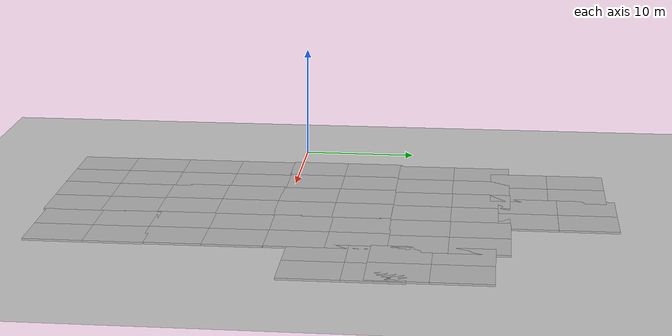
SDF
<sdf version="1.6">
 <world name="default">
  <model name="ground_plane">
   <static>1</static>
   <link name="link">
    <collision name="collision">
     <geometry><plane><normal>0 0 1</normal><size>100 100</size></plane></geometry>
     <surface><friction><ode><mu>100</mu><mu2>50</mu2></ode></friction></surface>
    </collision>
    <visual name="visual">
     <cast_shadows>0</cast_shadows>
     <geometry><plane><normal>0 0 1</normal><size>100 100</size></plane></geometry>
     <material>
      <script><uri>file://media/materials/scripts/gazebo.material</uri><name>Gazebo/Grey</name></script>
     </material>
    </visual>
   </link>
  </model>
  <model name="mud_box_clone_6">
   <static>1</static>
   <link name="link">
    <collision name="collision"><geometry><box><size>8 10 0.2</size></box></geometry></collision>
    <visual name="visual_1">
     <pose>-2 2.5 0 0 -0 0</pose>
     <cast_shadows>0</cast_shadows>
     <geometry><box><size>4 5 0.2</size></box></geometry>
     <material>
      <script>
       <uri>model://mud_box/materials/scripts</uri>
       <uri>model://mud_box/materials/textures</uri>
       <name>vrc/mud</name>
      </script>
     </material>
    </visual>
    <visual name="visual_2">
     <pose>2 2.5 0 0 -0 0</pose>
     <cast_shadows>0</cast_shadows>
     <geometry><box><size>4 5 0.2</size></box></geometry>
     <material>
      <script>
       <uri>model://mud_box/materials/scripts</uri>
       <uri>model://mud_box/materials/textures</uri>
       <name>vrc/mud</name>
      </script>
     </material>
    </visual>
    <visual name="visual_3">
     <pose>2 -2.5 0 0 -0 0</pose>
     <cast_shadows>0</cast_shadows>
     <geometry><box><size>4 5 0.2</size></box></geometry>
     <material>
      <script>
       <uri>model://mud_box/materials/scripts</uri>
       <uri>model://mud_box/materials/textures</uri>
       <name>vrc/mud</name>
      </script>
     </material>
    </visual>
    <visual name="visual_4">
     <pose>-2 -2.5 0 0 -0 0</pose>
     <cast_shadows>0</cast_shadows>
     <geometry><box><size>4 5 0.2</size></box></geometry>
     <material>
      <script>
       <uri>model://mud_box/materials/scripts</uri>
       <uri>model://mud_box/materials/textures</uri>
       <name>vrc/mud</name>
      </script>
     </material>
    </visual>
   </link>
   <pose>8.04973 14.0971 0 0 -0 0</pose>
  </model>
  <model name="mud_box_clone_7">
   <static>1</static>
   <link name="link">
    <collision name="collision"><geometry><box><size>8 10 0.2</size></box></geometry></collision>
    <visual name="visual_1">
     <pose>-2 2.5 0 0 -0 0</pose>
     <cast_shadows>0</cast_shadows>
     <geometry><box><size>4 5 0.2</size></box></geometry>
     <material>
      <script>
       <uri>model://mud_box/materials/scripts</uri>
       <uri>model://mud_box/materials/textures</uri>
       <name>vrc/mud</name>
      </script>
     </material>
    </visual>
    <visual name="visual_2">
     <pose>2 2.5 0 0 -0 0</pose>
     <cast_shadows>0</cast_shadows>
     <geometry><box><size>4 5 0.2</size></box></geometry>
     <material>
      <script>
       <uri>model://mud_box/materials/scripts</uri>
       <uri>model://mud_box/materials/textures</uri>
       <name>vrc/mud</name>
      </script>
     </material>
    </visual>
    <visual name="visual_3">
     <pose>2 -2.5 0 0 -0 0</pose>
     <cast_shadows>0</cast_shadows>
     <geometry><box><size>4 5 0.2</size></box></geometry>
     <material>
      <script>
       <uri>model://mud_box/materials/scripts</uri>
       <uri>model://mud_box/materials/textures</uri>
       <name>vrc/mud</name>
      </script>
     </material>
    </visual>
    <visual name="visual_4">
     <pose>-2 -2.5 0 0 -0 0</pose>
     <cast_shadows>0</cast_shadows>
     <geometry><box><size>4 5 0.2</size></box></geometry>
     <material>
      <script>
       <uri>model://mud_box/materials/scripts</uri>
       <uri>model://mud_box/materials/textures</uri>
       <name>vrc/mud</name>
      </script>
     </material>
    </visual>
   </link>
   <pose>7.63143 4.21295 0 0 -0 0</pose>
  </model>
  <model name="mud_box_clone_8">
   <static>1</static>
   <link name="link">
    <collision name="collision"><geometry><box><size>8 10 0.2</size></box></geometry></collision>
    <visual name="visual_1">
     <pose>-2 2.5 0 0 -0 0</pose>
     <cast_shadows>0</cast_shadows>
     <geometry><box><size>4 5 0.2</size></box></geometry>
     <material>
      <script>
       <uri>model://mud_box/materials/scripts</uri>
       <uri>model://mud_box/materials/textures</uri>
       <name>vrc/mud</name>
      </script>
     </material>
    </visual>
    <visual name="visual_2">
     <pose>2 2.5 0 0 -0 0</pose>
     <cast_shadows>0</cast_shadows>
     <geometry><box><size>4 5 0.2</size></box></geometry>
     <material>
      <script>
       <uri>model://mud_box/materials/scripts</uri>
       <uri>model://mud_box/materials/textures</uri>
       <name>vrc/mud</name>
      </script>
     </material>
    </visual>
    <visual name="visual_3">
     <pose>2 -2.5 0 0 -0 0</pose>
     <cast_shadows>0</cast_shadows>
     <geometry><box><size>4 5 0.2</size></box></geometry>
     <material>
      <script>
       <uri>model://mud_box/materials/scripts</uri>
       <uri>model://mud_box/materials/textures</uri>
       <name>vrc/mud</name>
      </script>
     </material>
    </visual>
    <visual name="visual_4">
     <pose>-2 -2.5 0 0 -0 0</pose>
     <cast_shadows>0</cast_shadows>
     <geometry><box><size>4 5 0.2</size></box></geometry>
     <material>
      <script>
       <uri>model://mud_box/materials/scripts</uri>
       <uri>model://mud_box/materials/textures</uri>
       <name>vrc/mud</name>
      </script>
     </material>
    </visual>
   </link>
   <pose>7.85797 -5.66121 0 0 -0 0</pose>
  </model>
  <model name="mud_box_clone_9">
   <static>1</static>
   <link name="link">
    <collision name="collision"><geometry><box><size>8 10 0.2</size></box></geometry></collision>
    <visual name="visual_1">
     <pose>-2 2.5 0 0 -0 0</pose>
     <cast_shadows>0</cast_shadows>
     <geometry><box><size>4 5 0.2</size></box></geometry>
     <material>
      <script>
       <uri>model://mud_box/materials/scripts</uri>
       <uri>model://mud_box/materials/textures</uri>
       <name>vrc/mud</name>
      </script>
     </material>
    </visual>
    <visual name="visual_2">
     <pose>2 2.5 0 0 -0 0</pose>
     <cast_shadows>0</cast_shadows>
     <geometry><box><size>4 5 0.2</size></box></geometry>
     <material>
      <script>
       <uri>model://mud_box/materials/scripts</uri>
       <uri>model://mud_box/materials/textures</uri>
       <name>vrc/mud</name>
      </script>
     </material>
    </visual>
    <visual name="visual_3">
     <pose>2 -2.5 0 0 -0 0</pose>
     <cast_shadows>0</cast_shadows>
     <geometry><box><size>4 5 0.2</size></box></geometry>
     <material>
      <script>
       <uri>model://mud_box/materials/scripts</uri>
       <uri>model://mud_box/materials/textures</uri>
       <name>vrc/mud</name>
      </script>
     </material>
    </visual>
    <visual name="visual_4">
     <pose>-2 -2.5 0 0 -0 0</pose>
     <cast_shadows>0</cast_shadows>
     <geometry><box><size>4 5 0.2</size></box></geometry>
     <material>
      <script>
       <uri>model://mud_box/materials/scripts</uri>
       <uri>model://mud_box/materials/textures</uri>
       <name>vrc/mud</name>
      </script>
     </material>
    </visual>
   </link>
   <pose>7.84247 -15.6283 0 0 -0 0</pose>
  </model>
  <model name="mud_box_clone_10">
   <static>1</static>
   <link name="link">
    <collision name="collision"><geometry><box><size>8 10 0.2</size></box></geometry></collision>
    <visual name="visual_1">
     <pose>-2 2.5 0 0 -0 0</pose>
     <cast_shadows>0</cast_shadows>
     <geometry><box><size>4 5 0.2</size></box></geometry>
     <material>
      <script>
       <uri>model://mud_box/materials/scripts</uri>
       <uri>model://mud_box/materials/textures</uri>
       <name>vrc/mud</name>
      </script>
     </material>
    </visual>
    <visual name="visual_2">
     <pose>2 2.5 0 0 -0 0</pose>
     <cast_shadows>0</cast_shadows>
     <geometry><box><size>4 5 0.2</size></box></geometry>
     <material>
      <script>
       <uri>model://mud_box/materials/scripts</uri>
       <uri>model://mud_box/materials/textures</uri>
       <name>vrc/mud</name>
      </script>
     </material>
    </visual>
    <visual name="visual_3">
     <pose>2 -2.5 0 0 -0 0</pose>
     <cast_shadows>0</cast_shadows>
     <geometry><box><size>4 5 0.2</size></box></geometry>
     <material>
      <script>
       <uri>model://mud_box/materials/scripts</uri>
       <uri>model://mud_box/materials/textures</uri>
       <name>vrc/mud</name>
      </script>
     </material>
    </visual>
    <visual name="visual_4">
     <pose>-2 -2.5 0 0 -0 0</pose>
     <cast_shadows>0</cast_shadows>
     <geometry><box><size>4 5 0.2</size></box></geometry>
     <material>
      <script>
       <uri>model://mud_box/materials/scripts</uri>
       <uri>model://mud_box/materials/textures</uri>
       <name>vrc/mud</name>
      </script>
     </material>
    </visual>
   </link>
   <pose>15.8315 14.1607 0 0 -0 0</pose>
  </model>
  <model name="mud_box_clone_11">
   <static>1</static>
   <link name="link">
    <collision name="collision"><geometry><box><size>8 10 0.2</size></box></geometry></collision>
    <visual name="visual_1">
     <pose>-2 2.5 0 0 -0 0</pose>
     <cast_shadows>0</cast_shadows>
     <geometry><box><size>4 5 0.2</size></box></geometry>
     <material>
      <script>
       <uri>model://mud_box/materials/scripts</uri>
       <uri>model://mud_box/materials/textures</uri>
       <name>vrc/mud</name>
      </script>
     </material>
    </visual>
    <visual name="visual_2">
     <pose>2 2.5 0 0 -0 0</pose>
     <cast_shadows>0</cast_shadows>
     <geometry><box><size>4 5 0.2</size></box></geometry>
     <material>
      <script>
       <uri>model://mud_box/materials/scripts</uri>
       <uri>model://mud_box/materials/textures</uri>
       <name>vrc/mud</name>
      </script>
     </material>
    </visual>
    <visual name="visual_3">
     <pose>2 -2.5 0 0 -0 0</pose>
     <cast_shadows>0</cast_shadows>
     <geometry><box><size>4 5 0.2</size></box></geometry>
     <material>
      <script>
       <uri>model://mud_box/materials/scripts</uri>
       <uri>model://mud_box/materials/textures</uri>
       <name>vrc/mud</name>
      </script>
     </material>
    </visual>
    <visual name="visual_4">
     <pose>-2 -2.5 0 0 -0 0</pose>
     <cast_shadows>0</cast_shadows>
     <geometry><box><size>4 5 0.2</size></box></geometry>
     <material>
      <script>
       <uri>model://mud_box/materials/scripts</uri>
       <uri>model://mud_box/materials/textures</uri>
       <name>vrc/mud</name>
      </script>
     </material>
    </visual>
   </link>
   <pose>15.551 4.15916 0 0 -0 0</pose>
  </model>
  <model name="mud_box_clone_12">
   <static>1</static>
   <link name="link">
    <collision name="collision"><geometry><box><size>8 10 0.2</size></box></geometry></collision>
    <visual name="visual_1">
     <pose>-2 2.5 0 0 -0 0</pose>
     <cast_shadows>0</cast_shadows>
     <geometry><box><size>4 5 0.2</size></box></geometry>
     <material>
      <script>
       <uri>model://mud_box/materials/scripts</uri>
       <uri>model://mud_box/materials/textures</uri>
       <name>vrc/mud</name>
      </script>
     </material>
    </visual>
    <visual name="visual_2">
     <pose>2 2.5 0 0 -0 0</pose>
     <cast_shadows>0</cast_shadows>
     <geometry><box><size>4 5 0.2</size></box></geometry>
     <material>
      <script>
       <uri>model://mud_box/materials/scripts</uri>
       <uri>model://mud_box/materials/textures</uri>
       <name>vrc/mud</name>
      </script>
     </material>
    </visual>
    <visual name="visual_3">
     <pose>2 -2.5 0 0 -0 0</pose>
     <cast_shadows>0</cast_shadows>
     <geometry><box><size>4 5 0.2</size></box></geometry>
     <material>
      <script>
       <uri>model://mud_box/materials/scripts</uri>
       <uri>model://mud_box/materials/textures</uri>
       <name>vrc/mud</name>
      </script>
     </material>
    </visual>
    <visual name="visual_4">
     <pose>-2 -2.5 0 0 -0 0</pose>
     <cast_shadows>0</cast_shadows>
     <geometry><box><size>4 5 0.2</size></box></geometry>
     <material>
      <script>
       <uri>model://mud_box/materials/scripts</uri>
       <uri>model://mud_box/materials/textures</uri>
       <name>vrc/mud</name>
      </script>
     </material>
    </visual>
   </link>
   <pose>15.4805 -5.7706 0 0 -0 0</pose>
  </model>
  <model name="mud_box_clone_13">
   <static>1</static>
   <link name="link">
    <collision name="collision"><geometry><box><size>8 10 0.2</size></box></geometry></collision>
    <visual name="visual_1">
     <pose>-2 2.5 0 0 -0 0</pose>
     <cast_shadows>0</cast_shadows>
     <geometry><box><size>4 5 0.2</size></box></geometry>
     <material>
      <script>
       <uri>model://mud_box/materials/scripts</uri>
       <uri>model://mud_box/materials/textures</uri>
       <name>vrc/mud</name>
      </script>
     </material>
    </visual>
    <visual name="visual_2">
     <pose>2 2.5 0 0 -0 0</pose>
     <cast_shadows>0</cast_shadows>
     <geometry><box><size>4 5 0.2</size></box></geometry>
     <material>
      <script>
       <uri>model://mud_box/materials/scripts</uri>
       <uri>model://mud_box/materials/textures</uri>
       <name>vrc/mud</name>
      </script>
     </material>
    </visual>
    <visual name="visual_3">
     <pose>2 -2.5 0 0 -0 0</pose>
     <cast_shadows>0</cast_shadows>
     <geometry><box><size>4 5 0.2</size></box></geometry>
     <material>
      <script>
       <uri>model://mud_box/materials/scripts</uri>
       <uri>model://mud_box/materials/textures</uri>
       <name>vrc/mud</name>
      </script>
     </material>
    </visual>
    <visual name="visual_4">
     <pose>-2 -2.5 0 0 -0 0</pose>
     <cast_shadows>0</cast_shadows>
     <geometry><box><size>4 5 0.2</size></box></geometry>
     <material>
      <script>
       <uri>model://mud_box/materials/scripts</uri>
       <uri>model://mud_box/materials/textures</uri>
       <name>vrc/mud</name>
      </script>
     </material>
    </visual>
   </link>
   <pose>15.6681 -15.6166 0 0 -0 0</pose>
  </model>
  <model name="mud_box_clone_14">
   <static>1</static>
   <link name="link">
    <collision name="collision"><geometry><box><size>8 10 0.2</size></box></geometry></collision>
    <visual name="visual_1">
     <pose>-2 2.5 0 0 -0 0</pose>
     <cast_shadows>0</cast_shadows>
     <geometry><box><size>4 5 0.2</size></box></geometry>
     <material>
      <script>
       <uri>model://mud_box/materials/scripts</uri>
       <uri>model://mud_box/materials/textures</uri>
       <name>vrc/mud</name>
      </script>
     </material>
    </visual>
    <visual name="visual_2">
     <pose>2 2.5 0 0 -0 0</pose>
     <cast_shadows>0</cast_shadows>
     <geometry><box><size>4 5 0.2</size></box></geometry>
     <material>
      <script>
       <uri>model://mud_box/materials/scripts</uri>
       <uri>model://mud_box/materials/textures</uri>
       <name>vrc/mud</name>
      </script>
     </material>
    </visual>
    <visual name="visual_3">
     <pose>2 -2.5 0 0 -0 0</pose>
     <cast_shadows>0</cast_shadows>
     <geometry><box><size>4 5 0.2</size></box></geometry>
     <material>
      <script>
       <uri>model://mud_box/materials/scripts</uri>
       <uri>model://mud_box/materials/textures</uri>
       <name>vrc/mud</name>
      </script>
     </material>
    </visual>
    <visual name="visual_4">
     <pose>-2 -2.5 0 0 -0 0</pose>
     <cast_shadows>0</cast_shadows>
     <geometry><box><size>4 5 0.2</size></box></geometry>
     <material>
      <script>
       <uri>model://mud_box/materials/scripts</uri>
       <uri>model://mud_box/materials/textures</uri>
       <name>vrc/mud</name>
      </script>
     </material>
    </visual>
   </link>
   <pose>23.7342 14.2072 0 0 -0 0</pose>
  </model>
  <model name="mud_box_clone_15">
   <static>1</static>
   <link name="link">
    <collision name="collision"><geometry><box><size>8 10 0.2</size></box></geometry></collision>
    <visual name="visual_1">
     <pose>-2 2.5 0 0 -0 0</pose>
     <cast_shadows>0</cast_shadows>
     <geometry><box><size>4 5 0.2</size></box></geometry>
     <material>
      <script>
       <uri>model://mud_box/materials/scripts</uri>
       <uri>model://mud_box/materials/textures</uri>
       <name>vrc/mud</name>
      </script>
     </material>
    </visual>
    <visual name="visual_2">
     <pose>2 2.5 0 0 -0 0</pose>
     <cast_shadows>0</cast_shadows>
     <geometry><box><size>4 5 0.2</size></box></geometry>
     <material>
      <script>
       <uri>model://mud_box/materials/scripts</uri>
       <uri>model://mud_box/materials/textures</uri>
       <name>vrc/mud</name>
      </script>
     </material>
    </visual>
    <visual name="visual_3">
     <pose>2 -2.5 0 0 -0 0</pose>
     <cast_shadows>0</cast_shadows>
     <geometry><box><size>4 5 0.2</size></box></geometry>
     <material>
      <script>
       <uri>model://mud_box/materials/scripts</uri>
       <uri>model://mud_box/materials/textures</uri>
       <name>vrc/mud</name>
      </script>
     </material>
    </visual>
    <visual name="visual_4">
     <pose>-2 -2.5 0 0 -0 0</pose>
     <cast_shadows>0</cast_shadows>
     <geometry><box><size>4 5 0.2</size></box></geometry>
     <material>
      <script>
       <uri>model://mud_box/materials/scripts</uri>
       <uri>model://mud_box/materials/textures</uri>
       <name>vrc/mud</name>
      </script>
     </material>
    </visual>
   </link>
   <pose>23.378 4.33494 0 0 -0 0</pose>
  </model>
  <model name="mud_box_clone_16">
   <static>1</static>
   <link name="link">
    <collision name="collision"><geometry><box><size>8 10 0.2</size></box></geometry></collision>
    <visual name="visual_1">
     <pose>-2 2.5 0 0 -0 0</pose>
     <cast_shadows>0</cast_shadows>
     <geometry><box><size>4 5 0.2</size></box></geometry>
     <material>
      <script>
       <uri>model://mud_box/materials/scripts</uri>
       <uri>model://mud_box/materials/textures</uri>
       <name>vrc/mud</name>
      </script>
     </material>
    </visual>
    <visual name="visual_2">
     <pose>2 2.5 0 0 -0 0</pose>
     <cast_shadows>0</cast_shadows>
     <geometry><box><size>4 5 0.2</size></box></geometry>
     <material>
      <script>
       <uri>model://mud_box/materials/scripts</uri>
       <uri>model://mud_box/materials/textures</uri>
       <name>vrc/mud</name>
      </script>
     </material>
    </visual>
    <visual name="visual_3">
     <pose>2 -2.5 0 0 -0 0</pose>
     <cast_shadows>0</cast_shadows>
     <geometry><box><size>4 5 0.2</size></box></geometry>
     <material>
      <script>
       <uri>model://mud_box/materials/scripts</uri>
       <uri>model://mud_box/materials/textures</uri>
       <name>vrc/mud</name>
      </script>
     </material>
    </visual>
    <visual name="visual_4">
     <pose>-2 -2.5 0 0 -0 0</pose>
     <cast_shadows>0</cast_shadows>
     <geometry><box><size>4 5 0.2</size></box></geometry>
     <material>
      <script>
       <uri>model://mud_box/materials/scripts</uri>
       <uri>model://mud_box/materials/textures</uri>
       <name>vrc/mud</name>
      </script>
     </material>
    </visual>
   </link>
   <pose>23.4386 -5.63894 0 0 -0 0</pose>
  </model>
  <model name="mud_box_clone_17">
   <static>1</static>
   <link name="link">
    <collision name="collision"><geometry><box><size>8 10 0.2</size></box></geometry></collision>
    <visual name="visual_1">
     <pose>-2 2.5 0 0 -0 0</pose>
     <cast_shadows>0</cast_shadows>
     <geometry><box><size>4 5 0.2</size></box></geometry>
     <material>
      <script>
       <uri>model://mud_box/materials/scripts</uri>
       <uri>model://mud_box/materials/textures</uri>
       <name>vrc/mud</name>
      </script>
     </material>
    </visual>
    <visual name="visual_2">
     <pose>2 2.5 0 0 -0 0</pose>
     <cast_shadows>0</cast_shadows>
     <geometry><box><size>4 5 0.2</size></box></geometry>
     <material>
      <script>
       <uri>model://mud_box/materials/scripts</uri>
       <uri>model://mud_box/materials/textures</uri>
       <name>vrc/mud</name>
      </script>
     </material>
    </visual>
    <visual name="visual_3">
     <pose>2 -2.5 0 0 -0 0</pose>
     <cast_shadows>0</cast_shadows>
     <geometry><box><size>4 5 0.2</size></box></geometry>
     <material>
      <script>
       <uri>model://mud_box/materials/scripts</uri>
       <uri>model://mud_box/materials/textures</uri>
       <name>vrc/mud</name>
      </script>
     </material>
    </visual>
    <visual name="visual_4">
     <pose>-2 -2.5 0 0 -0 0</pose>
     <cast_shadows>0</cast_shadows>
     <geometry><box><size>4 5 0.2</size></box></geometry>
     <material>
      <script>
       <uri>model://mud_box/materials/scripts</uri>
       <uri>model://mud_box/materials/textures</uri>
       <name>vrc/mud</name>
      </script>
     </material>
    </visual>
   </link>
   <pose>23.527 -15.3649 0 0 -0 0</pose>
  </model>
  <model name="mud_box_clone_1_clone_7">
   <static>1</static>
   <link name="link">
    <collision name="collision"><geometry><box><size>8 10 0.2</size></box></geometry></collision>
    <visual name="visual_1">
     <pose>-2 2.5 0 0 -0 0</pose>
     <cast_shadows>0</cast_shadows>
     <geometry><box><size>4 5 0.2</size></box></geometry>
     <material>
      <script>
       <uri>model://mud_box/materials/scripts</uri>
       <uri>model://mud_box/materials/textures</uri>
       <name>vrc/mud</name>
      </script>
     </material>
    </visual>
    <visual name="visual_2">
     <pose>2 2.5 0 0 -0 0</pose>
     <cast_shadows>0</cast_shadows>
     <geometry><box><size>4 5 0.2</size></box></geometry>
     <material>
      <script>
       <uri>model://mud_box/materials/scripts</uri>
       <uri>model://mud_box/materials/textures</uri>
       <name>vrc/mud</name>
      </script>
     </material>
    </visual>
    <visual name="visual_3">
     <pose>2 -2.5 0 0 -0 0</pose>
     <cast_shadows>0</cast_shadows>
     <geometry><box><size>4 5 0.2</size></box></geometry>
     <material>
      <script>
       <uri>model://mud_box/materials/scripts</uri>
       <uri>model://mud_box/materials/textures</uri>
       <name>vrc/mud</name>
      </script>
     </material>
    </visual>
    <visual name="visual_4">
     <pose>-2 -2.5 0 0 -0 0</pose>
     <cast_shadows>0</cast_shadows>
     <geometry><box><size>4 5 0.2</size></box></geometry>
     <material>
      <script>
       <uri>model://mud_box/materials/scripts</uri>
       <uri>model://mud_box/materials/textures</uri>
       <name>vrc/mud</name>
      </script>
     </material>
    </visual>
   </link>
   <pose>9.81848 22.4471 0 0 -0 0</pose>
  </model>
  <model name="mud_box_clone_1_clone_8">
   <static>1</static>
   <link name="link">
    <collision name="collision"><geometry><box><size>8 10 0.2</size></box></geometry></collision>
    <visual name="visual_1">
     <pose>-2 2.5 0 0 -0 0</pose>
     <cast_shadows>0</cast_shadows>
     <geometry><box><size>4 5 0.2</size></box></geometry>
     <material>
      <script>
       <uri>model://mud_box/materials/scripts</uri>
       <uri>model://mud_box/materials/textures</uri>
       <name>vrc/mud</name>
      </script>
     </material>
    </visual>
    <visual name="visual_2">
     <pose>2 2.5 0 0 -0 0</pose>
     <cast_shadows>0</cast_shadows>
     <geometry><box><size>4 5 0.2</size></box></geometry>
     <material>
      <script>
       <uri>model://mud_box/materials/scripts</uri>
       <uri>model://mud_box/materials/textures</uri>
       <name>vrc/mud</name>
      </script>
     </material>
    </visual>
    <visual name="visual_3">
     <pose>2 -2.5 0 0 -0 0</pose>
     <cast_shadows>0</cast_shadows>
     <geometry><box><size>4 5 0.2</size></box></geometry>
     <material>
      <script>
       <uri>model://mud_box/materials/scripts</uri>
       <uri>model://mud_box/materials/textures</uri>
       <name>vrc/mud</name>
      </script>
     </material>
    </visual>
    <visual name="visual_4">
     <pose>-2 -2.5 0 0 -0 0</pose>
     <cast_shadows>0</cast_shadows>
     <geometry><box><size>4 5 0.2</size></box></geometry>
     <material>
      <script>
       <uri>model://mud_box/materials/scripts</uri>
       <uri>model://mud_box/materials/textures</uri>
       <name>vrc/mud</name>
      </script>
     </material>
    </visual>
   </link>
   <pose>17.1773 23.1554 0 0 -0 0</pose>
  </model>
  <model name="mud_box_clone_1_clone_9">
   <static>1</static>
   <link name="link">
    <collision name="collision"><geometry><box><size>8 10 0.2</size></box></geometry></collision>
    <visual name="visual_1">
     <pose>-2 2.5 0 0 -0 0</pose>
     <cast_shadows>0</cast_shadows>
     <geometry><box><size>4 5 0.2</size></box></geometry>
     <material>
      <script>
       <uri>model://mud_box/materials/scripts</uri>
       <uri>model://mud_box/materials/textures</uri>
       <name>vrc/mud</name>
      </script>
     </material>
    </visual>
    <visual name="visual_2">
     <pose>2 2.5 0 0 -0 0</pose>
     <cast_shadows>0</cast_shadows>
     <geometry><box><size>4 5 0.2</size></box></geometry>
     <material>
      <script>
       <uri>model://mud_box/materials/scripts</uri>
       <uri>model://mud_box/materials/textures</uri>
       <name>vrc/mud</name>
      </script>
     </material>
    </visual>
    <visual name="visual_3">
     <pose>2 -2.5 0 0 -0 0</pose>
     <cast_shadows>0</cast_shadows>
     <geometry><box><size>4 5 0.2</size></box></geometry>
     <material>
      <script>
       <uri>model://mud_box/materials/scripts</uri>
       <uri>model://mud_box/materials/textures</uri>
       <name>vrc/mud</name>
      </script>
     </material>
    </visual>
    <visual name="visual_4">
     <pose>-2 -2.5 0 0 -0 0</pose>
     <cast_shadows>0</cast_shadows>
     <geometry><box><size>4 5 0.2</size></box></geometry>
     <material>
      <script>
       <uri>model://mud_box/materials/scripts</uri>
       <uri>model://mud_box/materials/textures</uri>
       <name>vrc/mud</name>
      </script>
     </material>
    </visual>
   </link>
   <pose>30.3806 13.0002 0 0 -0 0</pose>
  </model>
  <model name="mud_box_clone_1_clone_10">
   <static>1</static>
   <link name="link">
    <collision name="collision"><geometry><box><size>8 10 0.2</size></box></geometry></collision>
    <visual name="visual_1">
     <pose>-2 2.5 0 0 -0 0</pose>
     <cast_shadows>0</cast_shadows>
     <geometry><box><size>4 5 0.2</size></box></geometry>
     <material>
      <script>
       <uri>model://mud_box/materials/scripts</uri>
       <uri>model://mud_box/materials/textures</uri>
       <name>vrc/mud</name>
      </script>
     </material>
    </visual>
    <visual name="visual_2">
     <pose>2 2.5 0 0 -0 0</pose>
     <cast_shadows>0</cast_shadows>
     <geometry><box><size>4 5 0.2</size></box></geometry>
     <material>
      <script>
       <uri>model://mud_box/materials/scripts</uri>
       <uri>model://mud_box/materials/textures</uri>
       <name>vrc/mud</name>
      </script>
     </material>
    </visual>
    <visual name="visual_3">
     <pose>2 -2.5 0 0 -0 0</pose>
     <cast_shadows>0</cast_shadows>
     <geometry><box><size>4 5 0.2</size></box></geometry>
     <material>
      <script>
       <uri>model://mud_box/materials/scripts</uri>
       <uri>model://mud_box/materials/textures</uri>
       <name>vrc/mud</name>
      </script>
     </material>
    </visual>
    <visual name="visual_4">
     <pose>-2 -2.5 0 0 -0 0</pose>
     <cast_shadows>0</cast_shadows>
     <geometry><box><size>4 5 0.2</size></box></geometry>
     <material>
      <script>
       <uri>model://mud_box/materials/scripts</uri>
       <uri>model://mud_box/materials/textures</uri>
       <name>vrc/mud</name>
      </script>
     </material>
    </visual>
   </link>
   <pose>30.5949 6.24701 0 0 -0 0</pose>
  </model>
 </world>
</sdf>
